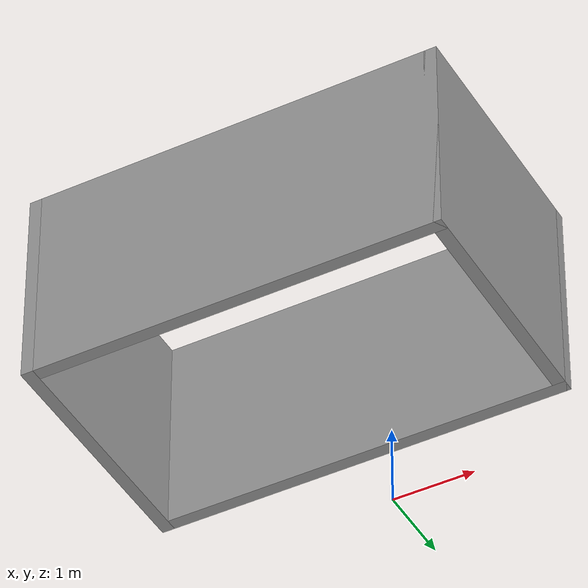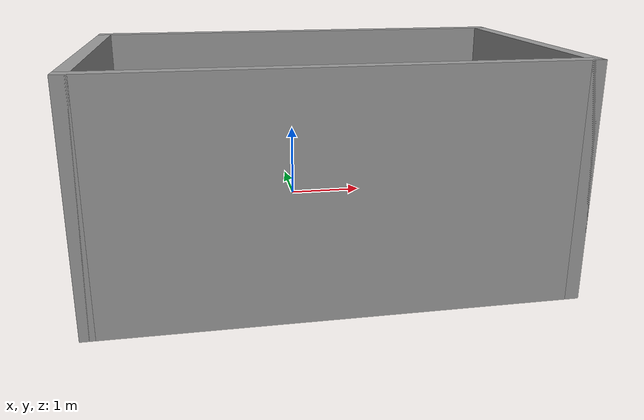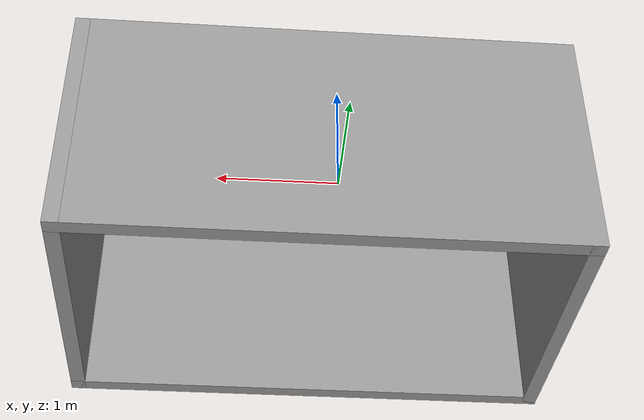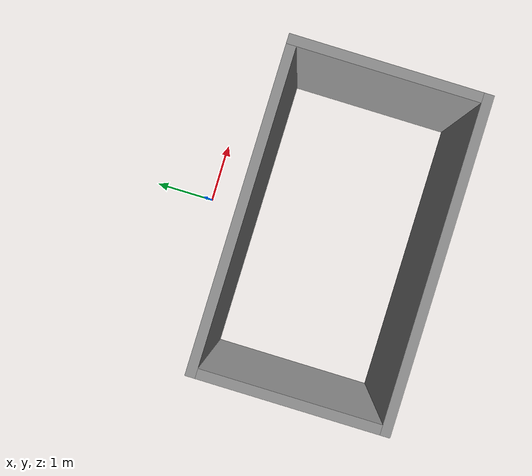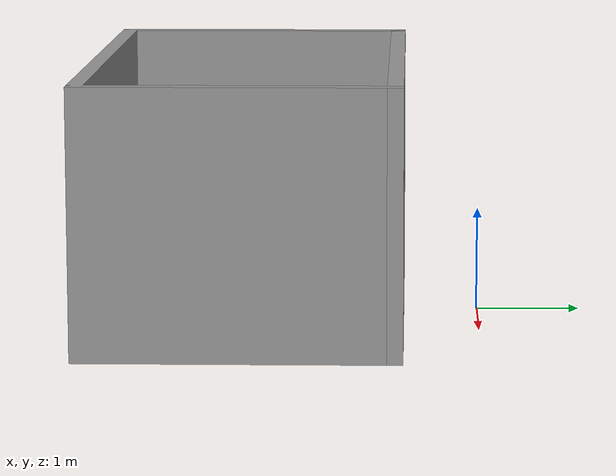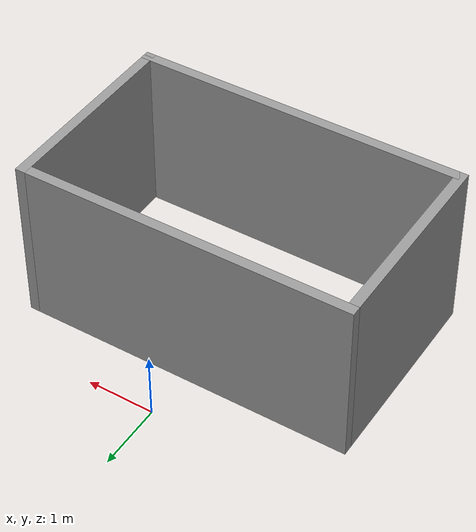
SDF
<?xml version='1.0'?>
<sdf version='1.7'>
  <model name='Untitled1'>
    <pose>0.015 -1.8575 0 0 -0 0</pose>
    <link name='Wall_0'>
      <collision name='Wall_0_Collision'>
        <geometry>
          <box>
            <size>5 0.15 2.5</size>
          </box>
        </geometry>
        <pose>0 0 1.25 0 -0 0</pose>
      </collision>
      <visual name='Wall_0_Visual'>
        <pose>0 0 1.25 0 -0 0</pose>
        <geometry>
          <box>
            <size>5 0.15 2.5</size>
          </box>
        </geometry>
        <material>
          <script>
            <uri>file://media/materials/scripts/gazebo.material</uri>
            <name>Gazebo/Grey</name>
          </script>
          <ambient>1 1 1 1</ambient>
        </material>
        <meta>
          <layer>0</layer>
        </meta>
      </visual>
      <pose>0 -1.7825 0 0 -0 0</pose>
    </link>
    <link name='Wall_1'>
      <collision name='Wall_1_Collision'>
        <geometry>
          <box>
            <size>3 0.15 2.5</size>
          </box>
        </geometry>
        <pose>0 0 1.25 0 -0 0</pose>
      </collision>
      <visual name='Wall_1_Visual'>
        <pose>0 0 1.25 0 -0 0</pose>
        <geometry>
          <box>
            <size>3 0.15 2.5</size>
          </box>
        </geometry>
        <material>
          <script>
            <uri>file://media/materials/scripts/gazebo.material</uri>
            <name>Gazebo/Grey</name>
          </script>
          <ambient>1 1 1 1</ambient>
        </material>
        <meta>
          <layer>0</layer>
        </meta>
      </visual>
      <pose>2.425 -0.3575 0 0 -0 1.5708</pose>
    </link>
    <link name='Wall_2'>
      <collision name='Wall_2_Collision'>
        <geometry>
          <box>
            <size>5 0.15 2.5</size>
          </box>
        </geometry>
        <pose>0 0 1.25 0 -0 0</pose>
      </collision>
      <visual name='Wall_2_Visual'>
        <pose>0 0 1.25 0 -0 0</pose>
        <geometry>
          <box>
            <size>5 0.15 2.5</size>
          </box>
        </geometry>
        <material>
          <script>
            <uri>file://media/materials/scripts/gazebo.material</uri>
            <name>Gazebo/Grey</name>
          </script>
          <ambient>1 1 1 1</ambient>
        </material>
        <meta>
          <layer>0</layer>
        </meta>
      </visual>
      <pose>0 1.0675 0 0 -0 3.14159</pose>
    </link>
    <link name='Wall_3'>
      <collision name='Wall_3_Collision'>
        <geometry>
          <box>
            <size>3 0.15 2.5</size>
          </box>
        </geometry>
        <pose>0 0 1.25 0 -0 0</pose>
      </collision>
      <visual name='Wall_3_Visual'>
        <pose>0 0 1.25 0 -0 0</pose>
        <geometry>
          <box>
            <size>3 0.15 2.5</size>
          </box>
        </geometry>
        <material>
          <script>
            <uri>file://media/materials/scripts/gazebo.material</uri>
            <name>Gazebo/Grey</name>
          </script>
          <ambient>1 1 1 1</ambient>
        </material>
        <meta>
          <layer>0</layer>
        </meta>
      </visual>
      <pose>-2.425 -0.3575 0 0 -0 -1.5708</pose>
    </link>
    <static>1</static>
  </model>
</sdf>
